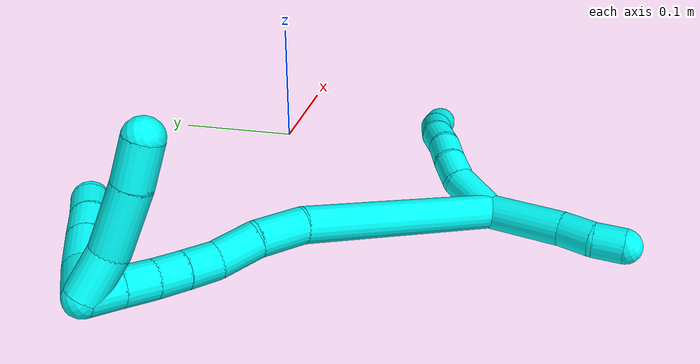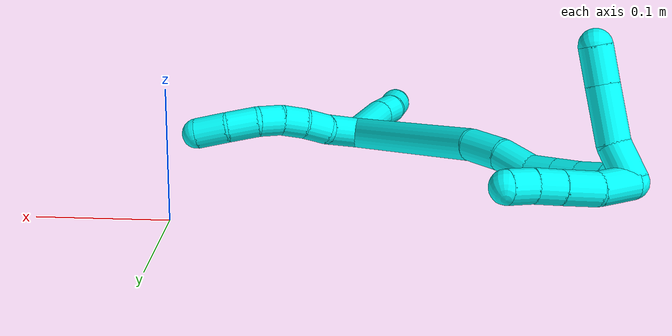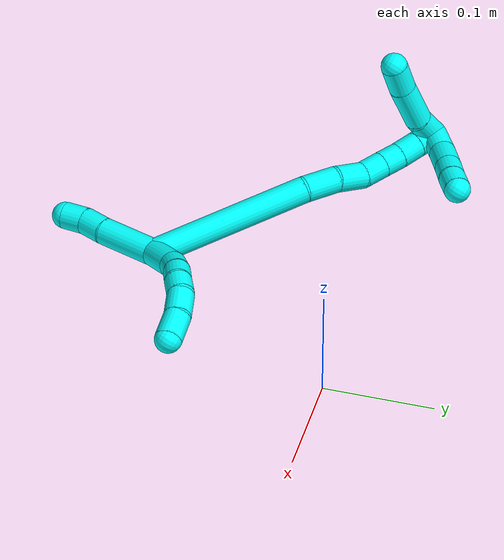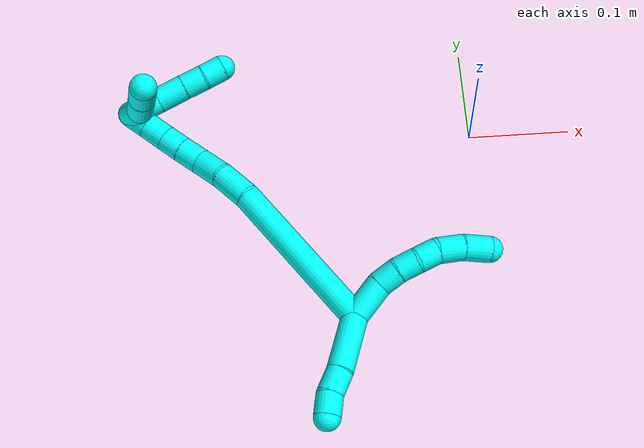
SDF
<sdf version="1.7">
 <world name="default">
  <model name="3">
   <static>0</static>
   <link name="3">
    <collision name="collision-cylinder-e_1_2_8">
     <pose>0.01499 0.004635 -0.009726 -2.69688 0.947623 -2.31103</pose>
     <geometry><cylinder><radius>0.0125</radius><length>0.036921</length></cylinder></geometry>
     <surface>
      <friction><ode><mu>1.16</mu><mu2>1.16</mu2><slip1>0</slip1><slip2>0</slip2></ode></friction>
      <contact><ode><kp>1e+06</kp><kd>1</kd><max_vel>0</max_vel><min_depth>0.001</min_depth></ode></contact>
     </surface>
    </collision>
    <visual name="visual-cylinder-e_1_2_8">
     <pose>0.01499 0.004635 -0.009726 -2.69688 0.947623 -2.31103</pose>
     <geometry><cylinder><radius>0.0125</radius><length>0.036921</length></cylinder></geometry>
     <material><ambient>0.003922 1 0.996078 1</ambient></material>
    </visual>
    <collision name="collision-cylinder-e_2_8_9">
     <pose>0.040118 0.010637 -0.022271 -2.69022 1.271 -2.53803</pose>
     <geometry><cylinder><radius>0.0125</radius><length>0.021222</length></cylinder></geometry>
     <surface>
      <friction><ode><mu>1.16</mu><mu2>1.16</mu2><slip1>0</slip1><slip2>0</slip2></ode></friction>
      <contact><ode><kp>1e+06</kp><kd>1</kd><max_vel>0</max_vel><min_depth>0.001</min_depth></ode></contact>
     </surface>
    </collision>
    <visual name="visual-cylinder-e_2_8_9">
     <pose>0.040118 0.010637 -0.022271 -2.69022 1.271 -2.53803</pose>
     <geometry><cylinder><radius>0.0125</radius><length>0.021222</length></cylinder></geometry>
     <material><ambient>0.003922 1 0.996078 1</ambient></material>
    </visual>
    <collision name="collision-cylinder-e_3_9_10">
     <pose>0.060002 0.011533 -0.027435 2.94349 1.33029 2.88954</pose>
     <geometry><cylinder><radius>0.0125</radius><length>0.02007</length></cylinder></geometry>
     <surface>
      <friction><ode><mu>1.16</mu><mu2>1.16</mu2><slip1>0</slip1><slip2>0</slip2></ode></friction>
      <contact><ode><kp>1e+06</kp><kd>1</kd><max_vel>0</max_vel><min_depth>0.001</min_depth></ode></contact>
     </surface>
    </collision>
    <visual name="visual-cylinder-e_3_9_10">
     <pose>0.060002 0.011533 -0.027435 2.94349 1.33029 2.88954</pose>
     <geometry><cylinder><radius>0.0125</radius><length>0.02007</length></cylinder></geometry>
     <material><ambient>0.003922 1 0.996078 1</ambient></material>
    </visual>
    <collision name="collision-cylinder-e_4_10_11">
     <pose>0.078949 0.009269 -0.033595 2.70218 1.14107 2.47184</pose>
     <geometry><cylinder><radius>0.0125</radius><length>0.020243</length></cylinder></geometry>
     <surface>
      <friction><ode><mu>1.16</mu><mu2>1.16</mu2><slip1>0</slip1><slip2>0</slip2></ode></friction>
      <contact><ode><kp>1e+06</kp><kd>1</kd><max_vel>0</max_vel><min_depth>0.001</min_depth></ode></contact>
     </surface>
    </collision>
    <visual name="visual-cylinder-e_4_10_11">
     <pose>0.078949 0.009269 -0.033595 2.70218 1.14107 2.47184</pose>
     <geometry><cylinder><radius>0.0125</radius><length>0.020243</length></cylinder></geometry>
     <material><ambient>0.003922 1 0.996078 1</ambient></material>
    </visual>
    <collision name="collision-cylinder-e_5_11_12">
     <pose>0.098872 0.001677 -0.040648 2.08011 1.01627 1.51835</pose>
     <geometry><cylinder><radius>0.0125</radius><length>0.025223</length></cylinder></geometry>
     <surface>
      <friction><ode><mu>1.16</mu><mu2>1.16</mu2><slip1>0</slip1><slip2>0</slip2></ode></friction>
      <contact><ode><kp>1e+06</kp><kd>1</kd><max_vel>0</max_vel><min_depth>0.001</min_depth></ode></contact>
     </surface>
    </collision>
    <visual name="visual-cylinder-e_5_11_12">
     <pose>0.098872 0.001677 -0.040648 2.08011 1.01627 1.51835</pose>
     <geometry><cylinder><radius>0.0125</radius><length>0.025223</length></cylinder></geometry>
     <material><ambient>0.003922 1 0.996078 1</ambient></material>
    </visual>
    <collision name="collision-cylinder-e_6_12_6">
     <pose>0.120057 -0.01196 -0.04539 1.76038 0.919104 1.07919</pose>
     <geometry><cylinder><radius>0.0125</radius><length>0.026322</length></cylinder></geometry>
     <surface>
      <friction><ode><mu>1.16</mu><mu2>1.16</mu2><slip1>0</slip1><slip2>0</slip2></ode></friction>
      <contact><ode><kp>1e+06</kp><kd>1</kd><max_vel>0</max_vel><min_depth>0.001</min_depth></ode></contact>
     </surface>
    </collision>
    <visual name="visual-cylinder-e_6_12_6">
     <pose>0.120057 -0.01196 -0.04539 1.76038 0.919104 1.07919</pose>
     <geometry><cylinder><radius>0.0125</radius><length>0.026322</length></cylinder></geometry>
     <material><ambient>0.003922 1 0.996078 1</ambient></material>
    </visual>
    <collision name="collision-cylinder-e_1_2_13">
     <pose>-0.011527 -0.007193 0.024102 0.290006 -0.429722 -0.063714</pose>
     <geometry><cylinder><radius>0.0125</radius><length>0.055336</length></cylinder></geometry>
     <surface>
      <friction><ode><mu>1.16</mu><mu2>1.16</mu2><slip1>0</slip1><slip2>0</slip2></ode></friction>
      <contact><ode><kp>1e+06</kp><kd>1</kd><max_vel>0</max_vel><min_depth>0.001</min_depth></ode></contact>
     </surface>
    </collision>
    <visual name="visual-cylinder-e_1_2_13">
     <pose>-0.011527 -0.007193 0.024102 0.290006 -0.429722 -0.063714</pose>
     <geometry><cylinder><radius>0.0125</radius><length>0.055336</length></cylinder></geometry>
     <material><ambient>0.003922 1 0.996078 1</ambient></material>
    </visual>
    <collision name="collision-cylinder-e_2_13_14">
     <pose>-0.029313 -0.016867 0.057802 0.25301 -0.563186 -0.07355</pose>
     <geometry><cylinder><radius>0.0125</radius><length>0.023447</length></cylinder></geometry>
     <surface>
      <friction><ode><mu>1.16</mu><mu2>1.16</mu2><slip1>0</slip1><slip2>0</slip2></ode></friction>
      <contact><ode><kp>1e+06</kp><kd>1</kd><max_vel>0</max_vel><min_depth>0.001</min_depth></ode></contact>
     </surface>
    </collision>
    <visual name="visual-cylinder-e_2_13_14">
     <pose>-0.029313 -0.016867 0.057802 0.25301 -0.563186 -0.07355</pose>
     <geometry><cylinder><radius>0.0125</radius><length>0.023447</length></cylinder></geometry>
     <material><ambient>0.003922 1 0.996078 1</ambient></material>
    </visual>
    <collision name="collision-cylinder-e_3_14_5">
     <pose>-0.038869 -0.02318 0.076726 0.389812 -0.315968 -0.062879</pose>
     <geometry><cylinder><radius>0.0125</radius><length>0.021216</length></cylinder></geometry>
     <surface>
      <friction><ode><mu>1.16</mu><mu2>1.16</mu2><slip1>0</slip1><slip2>0</slip2></ode></friction>
      <contact><ode><kp>1e+06</kp><kd>1</kd><max_vel>0</max_vel><min_depth>0.001</min_depth></ode></contact>
     </surface>
    </collision>
    <visual name="visual-cylinder-e_3_14_5">
     <pose>-0.038869 -0.02318 0.076726 0.389812 -0.315968 -0.062879</pose>
     <geometry><cylinder><radius>0.0125</radius><length>0.021216</length></cylinder></geometry>
     <material><ambient>0.003922 1 0.996078 1</ambient></material>
    </visual>
    <collision name="collision-cylinder-e_1_2_15">
     <pose>-0.02855 0.054932 -0.044491 -2.25156 -0.383847 0.773797</pose>
     <geometry><cylinder><radius>0.0125</radius><length>0.152474</length></cylinder></geometry>
     <surface>
      <friction><ode><mu>1.16</mu><mu2>1.16</mu2><slip1>0</slip1><slip2>0</slip2></ode></friction>
      <contact><ode><kp>1e+06</kp><kd>1</kd><max_vel>0</max_vel><min_depth>0.001</min_depth></ode></contact>
     </surface>
    </collision>
    <visual name="visual-cylinder-e_1_2_15">
     <pose>-0.02855 0.054932 -0.044491 -2.25156 -0.383847 0.773797</pose>
     <geometry><cylinder><radius>0.0125</radius><length>0.152474</length></cylinder></geometry>
     <material><ambient>0.003922 1 0.996078 1</ambient></material>
    </visual>
    <collision name="collision-cylinder-e_2_15_16">
     <pose>-0.065696 0.119523 -0.09931 -2.38972 -0.54621 1.23434</pose>
     <geometry><cylinder><radius>0.0125</radius><length>0.033096</length></cylinder></geometry>
     <surface>
      <friction><ode><mu>1.16</mu><mu2>1.16</mu2><slip1>0</slip1><slip2>0</slip2></ode></friction>
      <contact><ode><kp>1e+06</kp><kd>1</kd><max_vel>0</max_vel><min_depth>0.001</min_depth></ode></contact>
     </surface>
    </collision>
    <visual name="visual-cylinder-e_2_15_16">
     <pose>-0.065696 0.119523 -0.09931 -2.38972 -0.54621 1.23434</pose>
     <geometry><cylinder><radius>0.0125</radius><length>0.033096</length></cylinder></geometry>
     <material><ambient>0.003922 1 0.996078 1</ambient></material>
    </visual>
    <collision name="collision-cylinder-e_3_16_17">
     <pose>-0.0831 0.13516 -0.119599 -2.60095 -0.648697 1.76299</pose>
     <geometry><cylinder><radius>0.0125</radius><length>0.029158</length></cylinder></geometry>
     <surface>
      <friction><ode><mu>1.16</mu><mu2>1.16</mu2><slip1>0</slip1><slip2>0</slip2></ode></friction>
      <contact><ode><kp>1e+06</kp><kd>1</kd><max_vel>0</max_vel><min_depth>0.001</min_depth></ode></contact>
     </surface>
    </collision>
    <visual name="visual-cylinder-e_3_16_17">
     <pose>-0.0831 0.13516 -0.119599 -2.60095 -0.648697 1.76299</pose>
     <geometry><cylinder><radius>0.0125</radius><length>0.029158</length></cylinder></geometry>
     <material><ambient>0.003922 1 0.996078 1</ambient></material>
    </visual>
    <collision name="collision-cylinder-e_4_17_18">
     <pose>-0.098582 0.148539 -0.134963 -2.20151 -0.62954 1.13992</pose>
     <geometry><cylinder><radius>0.0125</radius><length>0.022673</length></cylinder></geometry>
     <surface>
      <friction><ode><mu>1.16</mu><mu2>1.16</mu2><slip1>0</slip1><slip2>0</slip2></ode></friction>
      <contact><ode><kp>1e+06</kp><kd>1</kd><max_vel>0</max_vel><min_depth>0.001</min_depth></ode></contact>
     </surface>
    </collision>
    <visual name="visual-cylinder-e_4_17_18">
     <pose>-0.098582 0.148539 -0.134963 -2.20151 -0.62954 1.13992</pose>
     <geometry><cylinder><radius>0.0125</radius><length>0.022673</length></cylinder></geometry>
     <material><ambient>0.003922 1 0.996078 1</ambient></material>
    </visual>
    <collision name="collision-cylinder-e_5_18_19">
     <pose>-0.110998 0.162601 -0.145295 -2.2077 -0.605881 1.10999</pose>
     <geometry><cylinder><radius>0.0125</radius><length>0.020161</length></cylinder></geometry>
     <surface>
      <friction><ode><mu>1.16</mu><mu2>1.16</mu2><slip1>0</slip1><slip2>0</slip2></ode></friction>
      <contact><ode><kp>1e+06</kp><kd>1</kd><max_vel>0</max_vel><min_depth>0.001</min_depth></ode></contact>
     </surface>
    </collision>
    <visual name="visual-cylinder-e_5_18_19">
     <pose>-0.110998 0.162601 -0.145295 -2.2077 -0.605881 1.10999</pose>
     <geometry><cylinder><radius>0.0125</radius><length>0.020161</length></cylinder></geometry>
     <material><ambient>0.003922 1 0.996078 1</ambient></material>
    </visual>
    <collision name="collision-cylinder-e_6_19_20">
     <pose>-0.122707 0.176868 -0.154955 -2.12742 -0.587816 0.997724</pose>
     <geometry><cylinder><radius>0.0125</radius><length>0.021528</length></cylinder></geometry>
     <surface>
      <friction><ode><mu>1.16</mu><mu2>1.16</mu2><slip1>0</slip1><slip2>0</slip2></ode></friction>
      <contact><ode><kp>1e+06</kp><kd>1</kd><max_vel>0</max_vel><min_depth>0.001</min_depth></ode></contact>
     </surface>
    </collision>
    <visual name="visual-cylinder-e_6_19_20">
     <pose>-0.122707 0.176868 -0.154955 -2.12742 -0.587816 0.997724</pose>
     <geometry><cylinder><radius>0.0125</radius><length>0.021528</length></cylinder></geometry>
     <material><ambient>0.003922 1 0.996078 1</ambient></material>
    </visual>
    <collision name="collision-cylinder-e_7_20_1">
     <pose>-0.134547 0.191777 -0.164324 -2.13648 -0.596249 1.01957</pose>
     <geometry><cylinder><radius>0.0125</radius><length>0.02091</length></cylinder></geometry>
     <surface>
      <friction><ode><mu>1.16</mu><mu2>1.16</mu2><slip1>0</slip1><slip2>0</slip2></ode></friction>
      <contact><ode><kp>1e+06</kp><kd>1</kd><max_vel>0</max_vel><min_depth>0.001</min_depth></ode></contact>
     </surface>
    </collision>
    <visual name="visual-cylinder-e_7_20_1">
     <pose>-0.134547 0.191777 -0.164324 -2.13648 -0.596249 1.01957</pose>
     <geometry><cylinder><radius>0.0125</radius><length>0.02091</length></cylinder></geometry>
     <material><ambient>0.003922 1 0.996078 1</ambient></material>
    </visual>
    <collision name="collision-cylinder-e_1_1_21">
     <pose>-0.127918 0.196681 -0.176028 2.81434 1.03258 2.57551</pose>
     <geometry><cylinder><radius>0.0125</radius><length>0.029118</length></cylinder></geometry>
     <surface>
      <friction><ode><mu>1.16</mu><mu2>1.16</mu2><slip1>0</slip1><slip2>0</slip2></ode></friction>
      <contact><ode><kp>1e+06</kp><kd>1</kd><max_vel>0</max_vel><min_depth>0.001</min_depth></ode></contact>
     </surface>
    </collision>
    <visual name="visual-cylinder-e_1_1_21">
     <pose>-0.127918 0.196681 -0.176028 2.81434 1.03258 2.57551</pose>
     <geometry><cylinder><radius>0.0125</radius><length>0.029118</length></cylinder></geometry>
     <material><ambient>0.003922 1 0.996078 1</ambient></material>
    </visual>
    <collision name="collision-cylinder-e_2_21_22">
     <pose>-0.101641 0.193153 -0.187703 2.90133 1.23912 2.80628</pose>
     <geometry><cylinder><radius>0.0125</radius><length>0.029139</length></cylinder></geometry>
     <surface>
      <friction><ode><mu>1.16</mu><mu2>1.16</mu2><slip1>0</slip1><slip2>0</slip2></ode></friction>
      <contact><ode><kp>1e+06</kp><kd>1</kd><max_vel>0</max_vel><min_depth>0.001</min_depth></ode></contact>
     </surface>
    </collision>
    <visual name="visual-cylinder-e_2_21_22">
     <pose>-0.101641 0.193153 -0.187703 2.90133 1.23912 2.80628</pose>
     <geometry><cylinder><radius>0.0125</radius><length>0.029139</length></cylinder></geometry>
     <material><ambient>0.003922 1 0.996078 1</ambient></material>
    </visual>
    <collision name="collision-cylinder-e_3_22_23">
     <pose>-0.077608 0.191053 -0.195469 2.84337 1.25923 2.73488</pose>
     <geometry><cylinder><radius>0.0125</radius><length>0.021554</length></cylinder></geometry>
     <surface>
      <friction><ode><mu>1.16</mu><mu2>1.16</mu2><slip1>0</slip1><slip2>0</slip2></ode></friction>
      <contact><ode><kp>1e+06</kp><kd>1</kd><max_vel>0</max_vel><min_depth>0.001</min_depth></ode></contact>
     </surface>
    </collision>
    <visual name="visual-cylinder-e_3_22_23">
     <pose>-0.077608 0.191053 -0.195469 2.84337 1.25923 2.73488</pose>
     <geometry><cylinder><radius>0.0125</radius><length>0.021554</length></cylinder></geometry>
     <material><ambient>0.003922 1 0.996078 1</ambient></material>
    </visual>
    <collision name="collision-cylinder-e_4_23_4">
     <pose>-0.058132 0.188972 -0.202588 2.86823 1.15095 2.72375</pose>
     <geometry><cylinder><radius>0.0125</radius><length>0.020189</length></cylinder></geometry>
     <surface>
      <friction><ode><mu>1.16</mu><mu2>1.16</mu2><slip1>0</slip1><slip2>0</slip2></ode></friction>
      <contact><ode><kp>1e+06</kp><kd>1</kd><max_vel>0</max_vel><min_depth>0.001</min_depth></ode></contact>
     </surface>
    </collision>
    <visual name="visual-cylinder-e_4_23_4">
     <pose>-0.058132 0.188972 -0.202588 2.86823 1.15095 2.72375</pose>
     <geometry><cylinder><radius>0.0125</radius><length>0.020189</length></cylinder></geometry>
     <material><ambient>0.003922 1 0.996078 1</ambient></material>
    </visual>
    <collision name="collision-cylinder-e_1_1_24">
     <pose>-0.131218 0.203385 -0.158404 -0.387208 0.678994 -0.138264</pose>
     <geometry><cylinder><radius>0.0125</radius><length>0.0293</length></cylinder></geometry>
     <surface>
      <friction><ode><mu>1.16</mu><mu2>1.16</mu2><slip1>0</slip1><slip2>0</slip2></ode></friction>
      <contact><ode><kp>1e+06</kp><kd>1</kd><max_vel>0</max_vel><min_depth>0.001</min_depth></ode></contact>
     </surface>
    </collision>
    <visual name="visual-cylinder-e_1_1_24">
     <pose>-0.131218 0.203385 -0.158404 -0.387208 0.678994 -0.138264</pose>
     <geometry><cylinder><radius>0.0125</radius><length>0.0293</length></cylinder></geometry>
     <material><ambient>0.003922 1 0.996078 1</ambient></material>
    </visual>
    <collision name="collision-cylinder-e_2_24_25">
     <pose>-0.111841 0.218843 -0.132811 -0.638185 0.497909 -0.167592</pose>
     <geometry><cylinder><radius>0.0125</radius><length>0.042619</length></cylinder></geometry>
     <surface>
      <friction><ode><mu>1.16</mu><mu2>1.16</mu2><slip1>0</slip1><slip2>0</slip2></ode></friction>
      <contact><ode><kp>1e+06</kp><kd>1</kd><max_vel>0</max_vel><min_depth>0.001</min_depth></ode></contact>
     </surface>
    </collision>
    <visual name="visual-cylinder-e_2_24_25">
     <pose>-0.111841 0.218843 -0.132811 -0.638185 0.497909 -0.167592</pose>
     <geometry><cylinder><radius>0.0125</radius><length>0.042619</length></cylinder></geometry>
     <material><ambient>0.003922 1 0.996078 1</ambient></material>
    </visual>
    <collision name="collision-cylinder-e_3_25_3">
     <pose>-0.094575 0.238153 -0.108808 -0.738157 0.529167 -0.208835</pose>
     <geometry><cylinder><radius>0.0125</radius><length>0.028081</length></cylinder></geometry>
     <surface>
      <friction><ode><mu>1.16</mu><mu2>1.16</mu2><slip1>0</slip1><slip2>0</slip2></ode></friction>
      <contact><ode><kp>1e+06</kp><kd>1</kd><max_vel>0</max_vel><min_depth>0.001</min_depth></ode></contact>
     </surface>
    </collision>
    <visual name="visual-cylinder-e_3_25_3">
     <pose>-0.094575 0.238153 -0.108808 -0.738157 0.529167 -0.208835</pose>
     <geometry><cylinder><radius>0.0125</radius><length>0.028081</length></cylinder></geometry>
     <material><ambient>0.003922 1 0.996078 1</ambient></material>
    </visual>
    <collision name="collision-sphere-3">
     <pose>-0.087488 0.246309 -0.099842 0 -0 0</pose>
     <geometry><sphere><radius>0.0125</radius></sphere></geometry>
     <surface>
      <friction><ode><mu>1.16</mu><mu2>1.16</mu2><slip1>0</slip1><slip2>0</slip2></ode></friction>
      <contact><ode><kp>1e+06</kp><kd>1</kd><max_vel>0</max_vel><min_depth>0.001</min_depth></ode></contact>
     </surface>
    </collision>
    <visual name="visual-sphere-3">
     <pose>-0.087488 0.246309 -0.099842 0 -0 0</pose>
     <geometry><sphere><radius>0.0125</radius></sphere></geometry>
     <material><ambient>0.003922 1 0.996078 1</ambient></material>
    </visual>
    <collision name="collision-sphere-25">
     <pose>-0.101663 0.229997 -0.117773 0 -0 0</pose>
     <geometry><sphere><radius>0.0125</radius></sphere></geometry>
     <surface>
      <friction><ode><mu>1.16</mu><mu2>1.16</mu2><slip1>0</slip1><slip2>0</slip2></ode></friction>
      <contact><ode><kp>1e+06</kp><kd>1</kd><max_vel>0</max_vel><min_depth>0.001</min_depth></ode></contact>
     </surface>
    </collision>
    <visual name="visual-sphere-25">
     <pose>-0.101663 0.229997 -0.117773 0 -0 0</pose>
     <geometry><sphere><radius>0.0125</radius></sphere></geometry>
     <material><ambient>0.003922 1 0.996078 1</ambient></material>
    </visual>
    <collision name="collision-sphere-24">
     <pose>-0.122018 0.20769 -0.147848 0 -0 0</pose>
     <geometry><sphere><radius>0.0125</radius></sphere></geometry>
     <surface>
      <friction><ode><mu>1.16</mu><mu2>1.16</mu2><slip1>0</slip1><slip2>0</slip2></ode></friction>
      <contact><ode><kp>1e+06</kp><kd>1</kd><max_vel>0</max_vel><min_depth>0.001</min_depth></ode></contact>
     </surface>
    </collision>
    <visual name="visual-sphere-24">
     <pose>-0.122018 0.20769 -0.147848 0 -0 0</pose>
     <geometry><sphere><radius>0.0125</radius></sphere></geometry>
     <material><ambient>0.003922 1 0.996078 1</ambient></material>
    </visual>
    <collision name="collision-sphere-4">
     <pose>-0.048914 0.187861 -0.20655 0 -0 0</pose>
     <geometry><sphere><radius>0.0125</radius></sphere></geometry>
     <surface>
      <friction><ode><mu>1.16</mu><mu2>1.16</mu2><slip1>0</slip1><slip2>0</slip2></ode></friction>
      <contact><ode><kp>1e+06</kp><kd>1</kd><max_vel>0</max_vel><min_depth>0.001</min_depth></ode></contact>
     </surface>
    </collision>
    <visual name="visual-sphere-4">
     <pose>-0.048914 0.187861 -0.20655 0 -0 0</pose>
     <geometry><sphere><radius>0.0125</radius></sphere></geometry>
     <material><ambient>0.003922 1 0.996078 1</ambient></material>
    </visual>
    <collision name="collision-sphere-23">
     <pose>-0.067349 0.190083 -0.198627 0 -0 0</pose>
     <geometry><sphere><radius>0.0125</radius></sphere></geometry>
     <surface>
      <friction><ode><mu>1.16</mu><mu2>1.16</mu2><slip1>0</slip1><slip2>0</slip2></ode></friction>
      <contact><ode><kp>1e+06</kp><kd>1</kd><max_vel>0</max_vel><min_depth>0.001</min_depth></ode></contact>
     </surface>
    </collision>
    <visual name="visual-sphere-23">
     <pose>-0.067349 0.190083 -0.198627 0 -0 0</pose>
     <geometry><sphere><radius>0.0125</radius></sphere></geometry>
     <material><ambient>0.003922 1 0.996078 1</ambient></material>
    </visual>
    <collision name="collision-sphere-22">
     <pose>-0.087866 0.192024 -0.192311 0 -0 0</pose>
     <geometry><sphere><radius>0.0125</radius></sphere></geometry>
     <surface>
      <friction><ode><mu>1.16</mu><mu2>1.16</mu2><slip1>0</slip1><slip2>0</slip2></ode></friction>
      <contact><ode><kp>1e+06</kp><kd>1</kd><max_vel>0</max_vel><min_depth>0.001</min_depth></ode></contact>
     </surface>
    </collision>
    <visual name="visual-sphere-22">
     <pose>-0.087866 0.192024 -0.192311 0 -0 0</pose>
     <geometry><sphere><radius>0.0125</radius></sphere></geometry>
     <material><ambient>0.003922 1 0.996078 1</ambient></material>
    </visual>
    <collision name="collision-sphere-21">
     <pose>-0.115417 0.194282 -0.183095 0 -0 0</pose>
     <geometry><sphere><radius>0.0125</radius></sphere></geometry>
     <surface>
      <friction><ode><mu>1.16</mu><mu2>1.16</mu2><slip1>0</slip1><slip2>0</slip2></ode></friction>
      <contact><ode><kp>1e+06</kp><kd>1</kd><max_vel>0</max_vel><min_depth>0.001</min_depth></ode></contact>
     </surface>
    </collision>
    <visual name="visual-sphere-21">
     <pose>-0.115417 0.194282 -0.183095 0 -0 0</pose>
     <geometry><sphere><radius>0.0125</radius></sphere></geometry>
     <material><ambient>0.003922 1 0.996078 1</ambient></material>
    </visual>
    <collision name="collision-sphere-1">
     <pose>-0.140418 0.19908 -0.168961 0 -0 0</pose>
     <geometry><sphere><radius>0.0125</radius></sphere></geometry>
     <surface>
      <friction><ode><mu>1.16</mu><mu2>1.16</mu2><slip1>0</slip1><slip2>0</slip2></ode></friction>
      <contact><ode><kp>1e+06</kp><kd>1</kd><max_vel>0</max_vel><min_depth>0.001</min_depth></ode></contact>
     </surface>
    </collision>
    <visual name="visual-sphere-1">
     <pose>-0.140418 0.19908 -0.168961 0 -0 0</pose>
     <geometry><sphere><radius>0.0125</radius></sphere></geometry>
     <material><ambient>0.003922 1 0.996078 1</ambient></material>
    </visual>
    <collision name="collision-sphere-12">
     <pose>0.109594 -0.00412 -0.043886 0 -0 0</pose>
     <geometry><sphere><radius>0.0125</radius></sphere></geometry>
     <surface>
      <friction><ode><mu>1.16</mu><mu2>1.16</mu2><slip1>0</slip1><slip2>0</slip2></ode></friction>
      <contact><ode><kp>1e+06</kp><kd>1</kd><max_vel>0</max_vel><min_depth>0.001</min_depth></ode></contact>
     </surface>
    </collision>
    <visual name="visual-sphere-12">
     <pose>0.109594 -0.00412 -0.043886 0 -0 0</pose>
     <geometry><sphere><radius>0.0125</radius></sphere></geometry>
     <material><ambient>0.003922 1 0.996078 1</ambient></material>
    </visual>
    <collision name="collision-sphere-11">
     <pose>0.08815 0.007475 -0.037411 0 -0 0</pose>
     <geometry><sphere><radius>0.0125</radius></sphere></geometry>
     <surface>
      <friction><ode><mu>1.16</mu><mu2>1.16</mu2><slip1>0</slip1><slip2>0</slip2></ode></friction>
      <contact><ode><kp>1e+06</kp><kd>1</kd><max_vel>0</max_vel><min_depth>0.001</min_depth></ode></contact>
     </surface>
    </collision>
    <visual name="visual-sphere-11">
     <pose>0.08815 0.007475 -0.037411 0 -0 0</pose>
     <geometry><sphere><radius>0.0125</radius></sphere></geometry>
     <material><ambient>0.003922 1 0.996078 1</ambient></material>
    </visual>
    <collision name="collision-sphere-10">
     <pose>0.069748 0.011063 -0.029778 0 -0 0</pose>
     <geometry><sphere><radius>0.0125</radius></sphere></geometry>
     <surface>
      <friction><ode><mu>1.16</mu><mu2>1.16</mu2><slip1>0</slip1><slip2>0</slip2></ode></friction>
      <contact><ode><kp>1e+06</kp><kd>1</kd><max_vel>0</max_vel><min_depth>0.001</min_depth></ode></contact>
     </surface>
    </collision>
    <visual name="visual-sphere-10">
     <pose>0.069748 0.011063 -0.029778 0 -0 0</pose>
     <geometry><sphere><radius>0.0125</radius></sphere></geometry>
     <material><ambient>0.003922 1 0.996078 1</ambient></material>
    </visual>
    <collision name="collision-sphere-9">
     <pose>0.050256 0.012003 -0.025091 0 -0 0</pose>
     <geometry><sphere><radius>0.0125</radius></sphere></geometry>
     <surface>
      <friction><ode><mu>1.16</mu><mu2>1.16</mu2><slip1>0</slip1><slip2>0</slip2></ode></friction>
      <contact><ode><kp>1e+06</kp><kd>1</kd><max_vel>0</max_vel><min_depth>0.001</min_depth></ode></contact>
     </surface>
    </collision>
    <visual name="visual-sphere-9">
     <pose>0.050256 0.012003 -0.025091 0 -0 0</pose>
     <geometry><sphere><radius>0.0125</radius></sphere></geometry>
     <material><ambient>0.003922 1 0.996078 1</ambient></material>
    </visual>
    <collision name="collision-sphere-2">
     <geometry><sphere><radius>0.0125</radius></sphere></geometry>
     <surface>
      <friction><ode><mu>1.16</mu><mu2>1.16</mu2><slip1>0</slip1><slip2>0</slip2></ode></friction>
      <contact><ode><kp>1e+06</kp><kd>1</kd><max_vel>0</max_vel><min_depth>0.001</min_depth></ode></contact>
     </surface>
    </collision>
    <visual name="visual-sphere-2">
     <geometry><sphere><radius>0.0125</radius></sphere></geometry>
     <material><ambient>0.003922 1 0.996078 1</ambient></material>
    </visual>
    <collision name="collision-sphere-19">
     <pose>-0.116738 0.169263 -0.150223 0 -0 0</pose>
     <geometry><sphere><radius>0.0125</radius></sphere></geometry>
     <surface>
      <friction><ode><mu>1.16</mu><mu2>1.16</mu2><slip1>0</slip1><slip2>0</slip2></ode></friction>
      <contact><ode><kp>1e+06</kp><kd>1</kd><max_vel>0</max_vel><min_depth>0.001</min_depth></ode></contact>
     </surface>
    </collision>
    <visual name="visual-sphere-19">
     <pose>-0.116738 0.169263 -0.150223 0 -0 0</pose>
     <geometry><sphere><radius>0.0125</radius></sphere></geometry>
     <material><ambient>0.003922 1 0.996078 1</ambient></material>
    </visual>
    <collision name="collision-sphere-8">
     <pose>0.029981 0.00927 -0.019452 0 -0 0</pose>
     <geometry><sphere><radius>0.0125</radius></sphere></geometry>
     <surface>
      <friction><ode><mu>1.16</mu><mu2>1.16</mu2><slip1>0</slip1><slip2>0</slip2></ode></friction>
      <contact><ode><kp>1e+06</kp><kd>1</kd><max_vel>0</max_vel><min_depth>0.001</min_depth></ode></contact>
     </surface>
    </collision>
    <visual name="visual-sphere-8">
     <pose>0.029981 0.00927 -0.019452 0 -0 0</pose>
     <geometry><sphere><radius>0.0125</radius></sphere></geometry>
     <material><ambient>0.003922 1 0.996078 1</ambient></material>
    </visual>
    <collision name="collision-sphere-6">
     <pose>0.130521 -0.019799 -0.046895 0 -0 0</pose>
     <geometry><sphere><radius>0.0125</radius></sphere></geometry>
     <surface>
      <friction><ode><mu>1.16</mu><mu2>1.16</mu2><slip1>0</slip1><slip2>0</slip2></ode></friction>
      <contact><ode><kp>1e+06</kp><kd>1</kd><max_vel>0</max_vel><min_depth>0.001</min_depth></ode></contact>
     </surface>
    </collision>
    <visual name="visual-sphere-6">
     <pose>0.130521 -0.019799 -0.046895 0 -0 0</pose>
     <geometry><sphere><radius>0.0125</radius></sphere></geometry>
     <material><ambient>0.003922 1 0.996078 1</ambient></material>
    </visual>
    <collision name="collision-sphere-13">
     <pose>-0.023054 -0.014385 0.048205 0 -0 0</pose>
     <geometry><sphere><radius>0.0125</radius></sphere></geometry>
     <surface>
      <friction><ode><mu>1.16</mu><mu2>1.16</mu2><slip1>0</slip1><slip2>0</slip2></ode></friction>
      <contact><ode><kp>1e+06</kp><kd>1</kd><max_vel>0</max_vel><min_depth>0.001</min_depth></ode></contact>
     </surface>
    </collision>
    <visual name="visual-sphere-13">
     <pose>-0.023054 -0.014385 0.048205 0 -0 0</pose>
     <geometry><sphere><radius>0.0125</radius></sphere></geometry>
     <material><ambient>0.003922 1 0.996078 1</ambient></material>
    </visual>
    <collision name="collision-sphere-14">
     <pose>-0.035572 -0.019348 0.067399 0 -0 0</pose>
     <geometry><sphere><radius>0.0125</radius></sphere></geometry>
     <surface>
      <friction><ode><mu>1.16</mu><mu2>1.16</mu2><slip1>0</slip1><slip2>0</slip2></ode></friction>
      <contact><ode><kp>1e+06</kp><kd>1</kd><max_vel>0</max_vel><min_depth>0.001</min_depth></ode></contact>
     </surface>
    </collision>
    <visual name="visual-sphere-14">
     <pose>-0.035572 -0.019348 0.067399 0 -0 0</pose>
     <geometry><sphere><radius>0.0125</radius></sphere></geometry>
     <material><ambient>0.003922 1 0.996078 1</ambient></material>
    </visual>
    <collision name="collision-sphere-5">
     <pose>-0.042165 -0.027011 0.086053 0 -0 0</pose>
     <geometry><sphere><radius>0.0125</radius></sphere></geometry>
     <surface>
      <friction><ode><mu>1.16</mu><mu2>1.16</mu2><slip1>0</slip1><slip2>0</slip2></ode></friction>
      <contact><ode><kp>1e+06</kp><kd>1</kd><max_vel>0</max_vel><min_depth>0.001</min_depth></ode></contact>
     </surface>
    </collision>
    <visual name="visual-sphere-5">
     <pose>-0.042165 -0.027011 0.086053 0 -0 0</pose>
     <geometry><sphere><radius>0.0125</radius></sphere></geometry>
     <material><ambient>0.003922 1 0.996078 1</ambient></material>
    </visual>
    <collision name="collision-sphere-15">
     <pose>-0.0571 0.109865 -0.088982 0 -0 0</pose>
     <geometry><sphere><radius>0.0125</radius></sphere></geometry>
     <surface>
      <friction><ode><mu>1.16</mu><mu2>1.16</mu2><slip1>0</slip1><slip2>0</slip2></ode></friction>
      <contact><ode><kp>1e+06</kp><kd>1</kd><max_vel>0</max_vel><min_depth>0.001</min_depth></ode></contact>
     </surface>
    </collision>
    <visual name="visual-sphere-15">
     <pose>-0.0571 0.109865 -0.088982 0 -0 0</pose>
     <geometry><sphere><radius>0.0125</radius></sphere></geometry>
     <material><ambient>0.003922 1 0.996078 1</ambient></material>
    </visual>
    <collision name="collision-sphere-16">
     <pose>-0.074292 0.129181 -0.109638 0 -0 0</pose>
     <geometry><sphere><radius>0.0125</radius></sphere></geometry>
     <surface>
      <friction><ode><mu>1.16</mu><mu2>1.16</mu2><slip1>0</slip1><slip2>0</slip2></ode></friction>
      <contact><ode><kp>1e+06</kp><kd>1</kd><max_vel>0</max_vel><min_depth>0.001</min_depth></ode></contact>
     </surface>
    </collision>
    <visual name="visual-sphere-16">
     <pose>-0.074292 0.129181 -0.109638 0 -0 0</pose>
     <geometry><sphere><radius>0.0125</radius></sphere></geometry>
     <material><ambient>0.003922 1 0.996078 1</ambient></material>
    </visual>
    <collision name="collision-sphere-17">
     <pose>-0.091908 0.141139 -0.129559 0 -0 0</pose>
     <geometry><sphere><radius>0.0125</radius></sphere></geometry>
     <surface>
      <friction><ode><mu>1.16</mu><mu2>1.16</mu2><slip1>0</slip1><slip2>0</slip2></ode></friction>
      <contact><ode><kp>1e+06</kp><kd>1</kd><max_vel>0</max_vel><min_depth>0.001</min_depth></ode></contact>
     </surface>
    </collision>
    <visual name="visual-sphere-17">
     <pose>-0.091908 0.141139 -0.129559 0 -0 0</pose>
     <geometry><sphere><radius>0.0125</radius></sphere></geometry>
     <material><ambient>0.003922 1 0.996078 1</ambient></material>
    </visual>
    <collision name="collision-sphere-18">
     <pose>-0.105257 0.15594 -0.140367 0 -0 0</pose>
     <geometry><sphere><radius>0.0125</radius></sphere></geometry>
     <surface>
      <friction><ode><mu>1.16</mu><mu2>1.16</mu2><slip1>0</slip1><slip2>0</slip2></ode></friction>
      <contact><ode><kp>1e+06</kp><kd>1</kd><max_vel>0</max_vel><min_depth>0.001</min_depth></ode></contact>
     </surface>
    </collision>
    <visual name="visual-sphere-18">
     <pose>-0.105257 0.15594 -0.140367 0 -0 0</pose>
     <geometry><sphere><radius>0.0125</radius></sphere></geometry>
     <material><ambient>0.003922 1 0.996078 1</ambient></material>
    </visual>
    <collision name="collision-sphere-20">
     <pose>-0.128676 0.184473 -0.159687 0 -0 0</pose>
     <geometry><sphere><radius>0.0125</radius></sphere></geometry>
     <surface>
      <friction><ode><mu>1.16</mu><mu2>1.16</mu2><slip1>0</slip1><slip2>0</slip2></ode></friction>
      <contact><ode><kp>1e+06</kp><kd>1</kd><max_vel>0</max_vel><min_depth>0.001</min_depth></ode></contact>
     </surface>
    </collision>
    <visual name="visual-sphere-20">
     <pose>-0.128676 0.184473 -0.159687 0 -0 0</pose>
     <geometry><sphere><radius>0.0125</radius></sphere></geometry>
     <material><ambient>0.003922 1 0.996078 1</ambient></material>
    </visual>
    <inertial>
     <pose>-0.042622 0.095008 -0.078053 0 -0 0</pose>
     <mass>0.75</mass>
     <inertia>
      <ixx>0.000439</ixx>
      <ixy>0</ixy>
      <ixz>0</ixz>
      <iyy>0.000201</iyy>
      <iyz>0</iyz>
      <izz>-0.000132</izz>
     </inertia>
    </inertial>
   </link>
   <pose>-0.127644 -0.193465 0.012344 1.06758 -0.388655 0.166821</pose>
  </model>
 </world>
</sdf>
